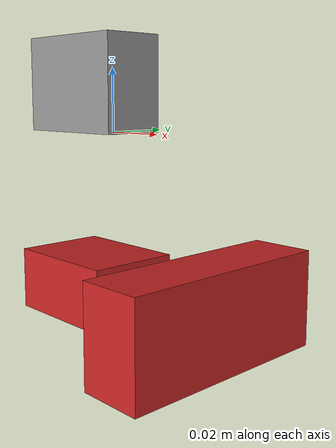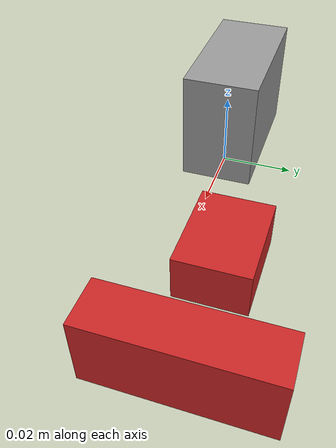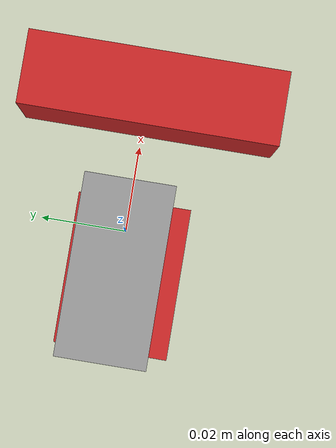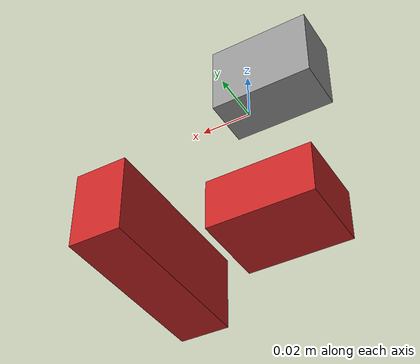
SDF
<?xml version='1.0'?>
<sdf version="1.4">
  <model name="EspressoFrameHead">
    <link name="body_link">
      <pose>0 0 0 0 0 0</pose>
      <inertial>
        <pose>-0.01 0 0.015 0 0 0</pose>
        <mass>0.1</mass>
        <inertia>
          <ixx>0.0000108</ixx>
          <ixy>0.0</ixy>
          <ixz>0.0</ixz>
          <iyy>0.0000208</iyy>
          <iyz>0.0</iyz>
          <izz>0.0000167</izz>
        </inertia>
      </inertial>
      <collision name="collision">
        <pose>-0.01 0 0.015 0 0 0</pose>
        <geometry>
          <box>
            <size>0.04 0.02 0.03</size>
          </box>
        </geometry>
      </collision>
      <visual name="visual">
        <pose>-0.01 0 0.015 0 0 0</pose>
        <geometry>
          <box>
            <size>0.04 0.02 0.03</size>
          </box>
        </geometry>
        <material>
          <script>
            <uri>file://media/materials/scripts/gazebo.material</uri>
            <name>Gazebo/Grey</name>
          </script>
        </material>
      </visual>
    </link>

    <joint name='yaw_joint' type='revolute'>
      <parent>body_link</parent>
      <child>yaw_link</child>
      <pose>0 0 0 0 0 0</pose>
      <axis>
        <use_parent_model_frame>true</use_parent_model_frame>
        <xyz>0 0 1</xyz>
        <limit>
          <lower>-1.5707</lower>
          <upper>1.5707</upper>
          <effort>1.0</effort>
          <velocity>3.0</velocity>
        </limit>
      </axis>
    </joint>

    <link name="yaw_link">
      <pose>0 0 -0.05 0 0 0</pose>
      <inertial>
        <mass>0.1</mass>
        <inertia>
          <ixx>0.0000167</ixx>
          <ixy>0.0</ixy>
          <ixz>0.0</ixz>
          <iyy>0.0000108</iyy>
          <iyz>0.0</iyz>
          <izz>0.0000208</izz>
        </inertia>
      </inertial>
      <collision name="collision">
        <pose>-0.01 0 0 0 0 0</pose>
        <geometry>
          <box>
            <size>0.04 0.03 0.02</size>
          </box>
        </geometry>
      </collision>
      <visual name="visual1">
        <pose>-0.01 0 0 0 0 0</pose>
        <geometry>
          <box>
            <size>0.04 0.03 0.02</size>
          </box>
        </geometry>
        <material>
          <script>
            <uri>file://media/materials/scripts/gazebo.material</uri>
            <name>Gazebo/Red</name>
          </script>
        </material>
      </visual>
    </link>

    <joint name='pitch_joint' type='revolute'>
      <parent>yaw_link</parent>
      <child>pitch_link</child>
      <pose>-0.04 0 0 0 0 0</pose>
      <axis>
        <use_parent_model_frame>true</use_parent_model_frame>
        <xyz>0 1 0</xyz>
        <limit>
          <lower>-1.5707</lower>
          <upper>1.5707</upper>
          <effort>1.0</effort>
          <velocity>3.0</velocity>
        </limit>
        <dynamics>
          <damping>0.0001</damping>
          <friction>0.0002</friction>
        </dynamics>
      </axis>
    </joint>

    <link name="pitch_link">
      <pose>0.04 0 -0.05 0 0 0</pose>
      <inertial>
        <pose>-0.04 0 0 0 0 0</pose>
        <mass>0.1</mass>
        <inertia>
          <ixx>0.000044</ixx>
          <ixy>0.0</ixy>
          <ixz>0.0</ixz>
          <iyy>0.000011</iyy>
          <iyz>0.0</iyz>
          <izz>0.000048</izz>
        </inertia>
      </inertial>
      <collision name="collision">
        <geometry>
          <box>
            <size>0.02 0.07 0.03</size>
          </box>
        </geometry>
      </collision>
      <visual name="visual1">
        <geometry>
          <box>
            <size>0.02 0.07 0.03</size>
          </box>
        </geometry>
        <material>
          <script>
            <uri>file://media/materials/scripts/gazebo.material</uri>
            <name>Gazebo/Red</name>
          </script>
        </material>
      </visual>
      <sensor type="camera" name="camera1">
        <visualize>true</visualize>
        <update_rate>10.0</update_rate>
        <camera name="head">
          <horizontal_fov>1.3</horizontal_fov>
          <image>
            <width>800</width>
            <height>600</height>
            <format>R8G8B8</format>
          </image>
          <clip>
            <near>0.02</near>
            <far>30</far>
          </clip>
          <noise>
            <type>gaussian</type>
            <mean>0.0</mean>
            <stddev>0.007</stddev>
          </noise>
        </camera>
        <plugin name="head_camera_controller" filename="libgazebo_ros_camera.so">
          <alwaysOn>true</alwaysOn>
          <updateRate>0.0</updateRate>
          <cameraName>head_camera</cameraName>
          <imageTopicName>/device/head_camera/image_raw</imageTopicName>
          <cameraInfoTopicName>/device/head_camera/camera_info</cameraInfoTopicName>
          <frameName>head_camera_optical_link</frameName>
          <hackBaseline>0.0</hackBaseline>
          <distortionK1>0.0</distortionK1>
          <distortionK2>0.0</distortionK2>
          <distortionK3>0.0</distortionK3>
          <distortionT1>0.0</distortionT1>
          <distortionT2>0.0</distortionT2>
        </plugin>
      </sensor>
    </link>

    <plugin name="feetech_turret_plugin" filename="libfeetech_turret_plugin.so">
    </plugin>
  </model>
</sdf>
